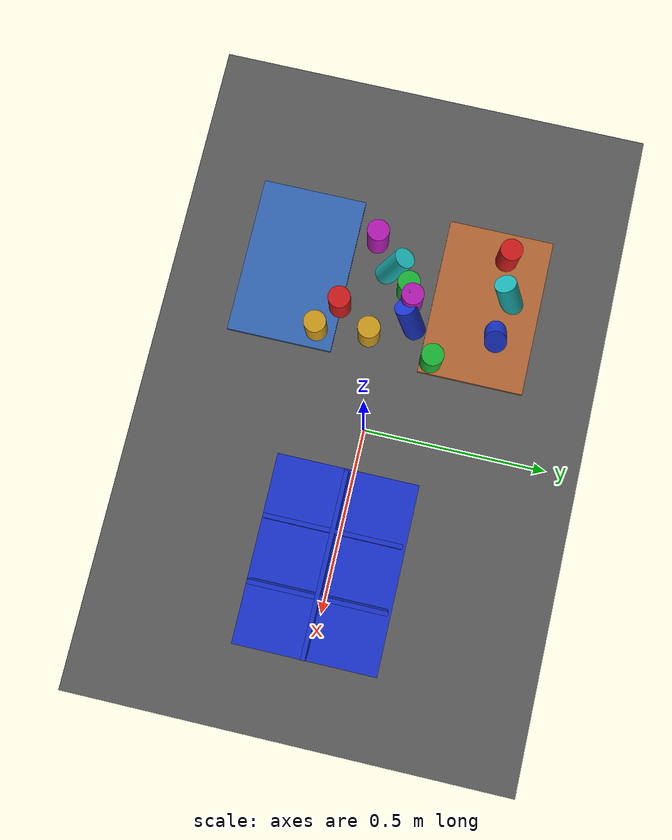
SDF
<?xml version="1.0" ?>
<sdf version="1.9">
  <!-- Standalone M1B scene.  The controller-backed Panda is spawned by the
       existing launch path; this file never alters the frozen M1A cube world. -->
  <world name="industrial_cylinder_v1">
    <physics name="bullet" type="bullet"><max_step_size>0.001</max_step_size><real_time_factor>1.0</real_time_factor></physics>
    <plugin name="gz::sim::systems::Physics" filename="gz-sim-physics-system"><engine><filename>gz-physics-bullet-featherstone-plugin</filename></engine></plugin>
    <plugin name="gz::sim::systems::UserCommands" filename="gz-sim-user-commands-system"/>
    <plugin name="gz::sim::systems::SceneBroadcaster" filename="gz-sim-scene-broadcaster-system"/>
    <plugin name="gz::sim::systems::Sensors" filename="gz-sim-sensors-system"><render_engine>ogre2</render_engine></plugin>
    <gravity>0 0 -9.81</gravity>
    <light type="directional" name="industrial_light"><pose>0 0 5 0 0 0</pose><direction>-0.3 0.2 -0.9</direction><diffuse>0.9 0.9 0.9 1</diffuse></light>
    <model name="industrial_work_table"><static>true</static><link name="link"><pose>0 0 0.4 0 0 0</pose><collision name="collision"><geometry><box><size>1.5 1.0 0.1</size></box></geometry></collision><visual name="visual"><geometry><box><size>1.5 1.0 0.1</size></box></geometry><material><diffuse>0.35 0.35 0.35 1</diffuse></material></visual></link></model>
    <model name="camera_fixture"><static>true</static><link name="camera_rgbd"><pose>-0.80 -0.80 1.40 0 0.77 0.93</pose><sensor name="front_rgbd" type="rgbd_camera"><always_on>1</always_on><update_rate>15</update_rate><topic>/xh/camera/rgbd</topic><camera><horizontal_fov>1.047</horizontal_fov><image><width>640</width><height>480</height><format>R8G8B8</format></image><clip><near>0.1</near><far>4.0</far></clip></camera></sensor></link></model>
    <model name="incoming_zone_a"><static>true</static><link name="link"><pose>-0.28 -0.22 0.455 0 0 0</pose><visual name="visual"><geometry><box><size>0.36 0.24 0.01</size></box></geometry><material><diffuse>0.2 0.4 0.7 1</diffuse></material></visual></link></model>
    <model name="incoming_zone_b"><static>true</static><link name="link"><pose>-0.28 0.22 0.455 0 0 0</pose><visual name="visual"><geometry><box><size>0.36 0.24 0.01</size></box></geometry><material><diffuse>0.7 0.4 0.2 1</diffuse></material></visual></link></model>
    <!-- M1B_RANDOM_PARTS_BEGIN -->
    <model name="cylinder_01"><pose>-0.2063 -0.1024 0.5000 0.0000 0.0000 2.8833</pose><link name="link"><inertial><mass>0.06</mass></inertial><collision name="collision"><geometry><cylinder><radius>0.025</radius><length>0.09</length></cylinder></geometry></collision><visual name="visual"><geometry><cylinder><radius>0.025</radius><length>0.09</length></cylinder></geometry><material><diffuse>0.800 0.100 0.100 1</diffuse><specular>0.15 0.15 0.15 1</specular></material></visual></link></model>
    <model name="cylinder_02"><pose>-0.1268 0.1242 0.5000 3.1416 0.0000 -2.6844</pose><link name="link"><inertial><mass>0.06</mass></inertial><collision name="collision"><geometry><cylinder><radius>0.025</radius><length>0.09</length></cylinder></geometry></collision><visual name="visual"><geometry><cylinder><radius>0.025</radius><length>0.09</length></cylinder></geometry><material><diffuse>0.100 0.700 0.200 1</diffuse><specular>0.15 0.15 0.15 1</specular></material></visual></link></model>
    <model name="cylinder_03"><pose>-0.2085 0.0592 0.4800 0.4500 -0.3000 -0.2002</pose><link name="link"><inertial><mass>0.06</mass></inertial><collision name="collision"><geometry><cylinder><radius>0.025</radius><length>0.09</length></cylinder></geometry></collision><visual name="visual"><geometry><cylinder><radius>0.025</radius><length>0.09</length></cylinder></geometry><material><diffuse>0.100 0.200 0.800 1</diffuse><specular>0.15 0.15 0.15 1</specular></material></visual></link></model>
    <model name="cylinder_04"><pose>-0.1551 -0.0241 0.5000 0.0000 0.0000 -0.7285</pose><link name="link"><inertial><mass>0.06</mass></inertial><collision name="collision"><geometry><cylinder><radius>0.025</radius><length>0.09</length></cylinder></geometry></collision><visual name="visual"><geometry><cylinder><radius>0.025</radius><length>0.09</length></cylinder></geometry><material><diffuse>0.800 0.600 0.100 1</diffuse><specular>0.15 0.15 0.15 1</specular></material></visual></link></model>
    <model name="cylinder_05"><pose>-0.3732 -0.0526 0.5000 3.1416 0.0000 -0.4274</pose><link name="link"><inertial><mass>0.06</mass></inertial><collision name="collision"><geometry><cylinder><radius>0.025</radius><length>0.09</length></cylinder></geometry></collision><visual name="visual"><geometry><cylinder><radius>0.025</radius><length>0.09</length></cylinder></geometry><material><diffuse>0.700 0.100 0.700 1</diffuse><specular>0.15 0.15 0.15 1</specular></material></visual></link></model>
    <model name="cylinder_06"><pose>-0.3096 0.2652 0.4800 0.4500 -0.3000 -0.1437</pose><link name="link"><inertial><mass>0.06</mass></inertial><collision name="collision"><geometry><cylinder><radius>0.025</radius><length>0.09</length></cylinder></geometry></collision><visual name="visual"><geometry><cylinder><radius>0.025</radius><length>0.09</length></cylinder></geometry><material><diffuse>0.100 0.700 0.700 1</diffuse><specular>0.15 0.15 0.15 1</specular></material></visual></link></model>
    <model name="cylinder_07"><pose>-0.3953 0.2433 0.5000 0.0000 0.0000 2.2426</pose><link name="link"><inertial><mass>0.06</mass></inertial><collision name="collision"><geometry><cylinder><radius>0.025</radius><length>0.09</length></cylinder></geometry></collision><visual name="visual"><geometry><cylinder><radius>0.025</radius><length>0.09</length></cylinder></geometry><material><diffuse>0.800 0.100 0.100 1</diffuse><specular>0.15 0.15 0.15 1</specular></material></visual></link></model>
    <model name="cylinder_08"><pose>-0.2742 0.0391 0.5000 3.1416 0.0000 -2.8881</pose><link name="link"><inertial><mass>0.06</mass></inertial><collision name="collision"><geometry><cylinder><radius>0.025</radius><length>0.09</length></cylinder></geometry></collision><visual name="visual"><geometry><cylinder><radius>0.025</radius><length>0.09</length></cylinder></geometry><material><diffuse>0.100 0.700 0.200 1</diffuse><specular>0.15 0.15 0.15 1</specular></material></visual></link></model>
    <model name="cylinder_09"><pose>-0.2138 0.2532 0.4800 0.4500 -0.3000 2.0926</pose><link name="link"><inertial><mass>0.06</mass></inertial><collision name="collision"><geometry><cylinder><radius>0.025</radius><length>0.09</length></cylinder></geometry></collision><visual name="visual"><geometry><cylinder><radius>0.025</radius><length>0.09</length></cylinder></geometry><material><diffuse>0.100 0.200 0.800 1</diffuse><specular>0.15 0.15 0.15 1</specular></material></visual></link></model>
    <model name="cylinder_10"><pose>-0.1415 -0.1420 0.5000 0.0000 0.0000 -0.2867</pose><link name="link"><inertial><mass>0.06</mass></inertial><collision name="collision"><geometry><cylinder><radius>0.025</radius><length>0.09</length></cylinder></geometry></collision><visual name="visual"><geometry><cylinder><radius>0.025</radius><length>0.09</length></cylinder></geometry><material><diffuse>0.800 0.600 0.100 1</diffuse><specular>0.15 0.15 0.15 1</specular></material></visual></link></model>
    <model name="cylinder_11"><pose>-0.2491 0.0531 0.5000 3.1416 0.0000 2.4861</pose><link name="link"><inertial><mass>0.06</mass></inertial><collision name="collision"><geometry><cylinder><radius>0.025</radius><length>0.09</length></cylinder></geometry></collision><visual name="visual"><geometry><cylinder><radius>0.025</radius><length>0.09</length></cylinder></geometry><material><diffuse>0.700 0.100 0.700 1</diffuse><specular>0.15 0.15 0.15 1</specular></material></visual></link></model>
    <model name="cylinder_12"><pose>-0.3196 -0.0015 0.4800 0.4500 -0.3000 -2.0160</pose><link name="link"><inertial><mass>0.06</mass></inertial><collision name="collision"><geometry><cylinder><radius>0.025</radius><length>0.09</length></cylinder></geometry></collision><visual name="visual"><geometry><cylinder><radius>0.025</radius><length>0.09</length></cylinder></geometry><material><diffuse>0.100 0.700 0.700 1</diffuse><specular>0.15 0.15 0.15 1</specular></material></visual></link></model>
    <!-- M1B_RANDOM_PARTS_END -->
    <model name="blue_partition_bin"><static>true</static><pose>0.36 0 0.45 0 0 0</pose><link name="link"><collision name="floor"><pose>0 0 0.01 0 0 0</pose><geometry><box><size>0.42 0.32 0.02</size></box></geometry></collision><visual name="floor_visual"><pose>0 0 0.01 0 0 0</pose><geometry><box><size>0.42 0.32 0.02</size></box></geometry><material><diffuse>0.1 0.2 0.8 1</diffuse></material></visual><visual name="row_divider"><pose>0 0 0.06 0 0 0</pose><geometry><box><size>0.40 0.01 0.10</size></box></geometry><material><diffuse>0.1 0.2 0.8 1</diffuse></material></visual><visual name="col_divider_a"><pose>-0.07 0 0.06 0 0 0</pose><geometry><box><size>0.01 0.30 0.10</size></box></geometry><material><diffuse>0.1 0.2 0.8 1</diffuse></material></visual><visual name="col_divider_b"><pose>0.07 0 0.06 0 0 0</pose><geometry><box><size>0.01 0.30 0.10</size></box></geometry><material><diffuse>0.1 0.2 0.8 1</diffuse></material></visual></link></model>
    <!-- Reserved only: second table, bin transport corridor, stackable-bin
         collision volume, and second arm mounting namespace. -->
  </world>
</sdf>
